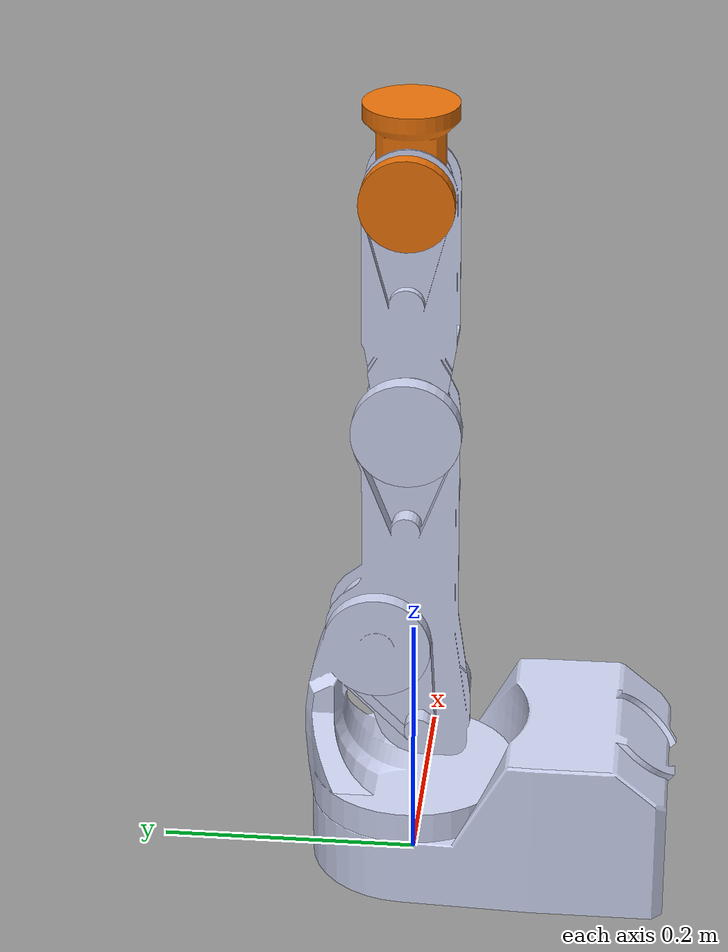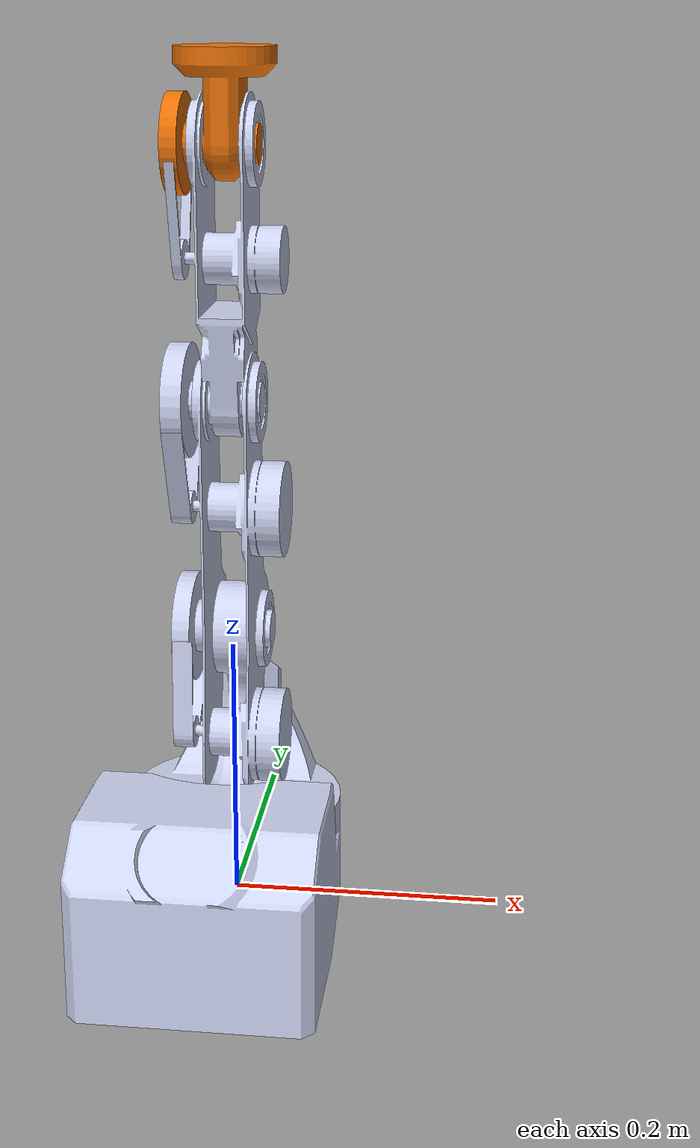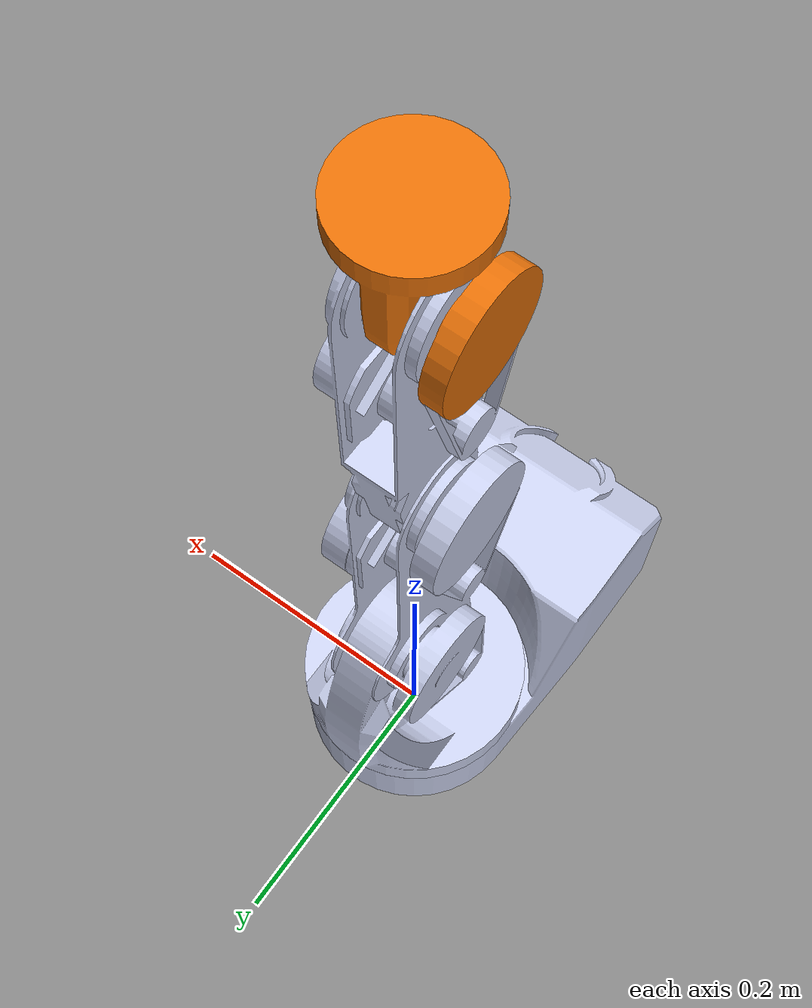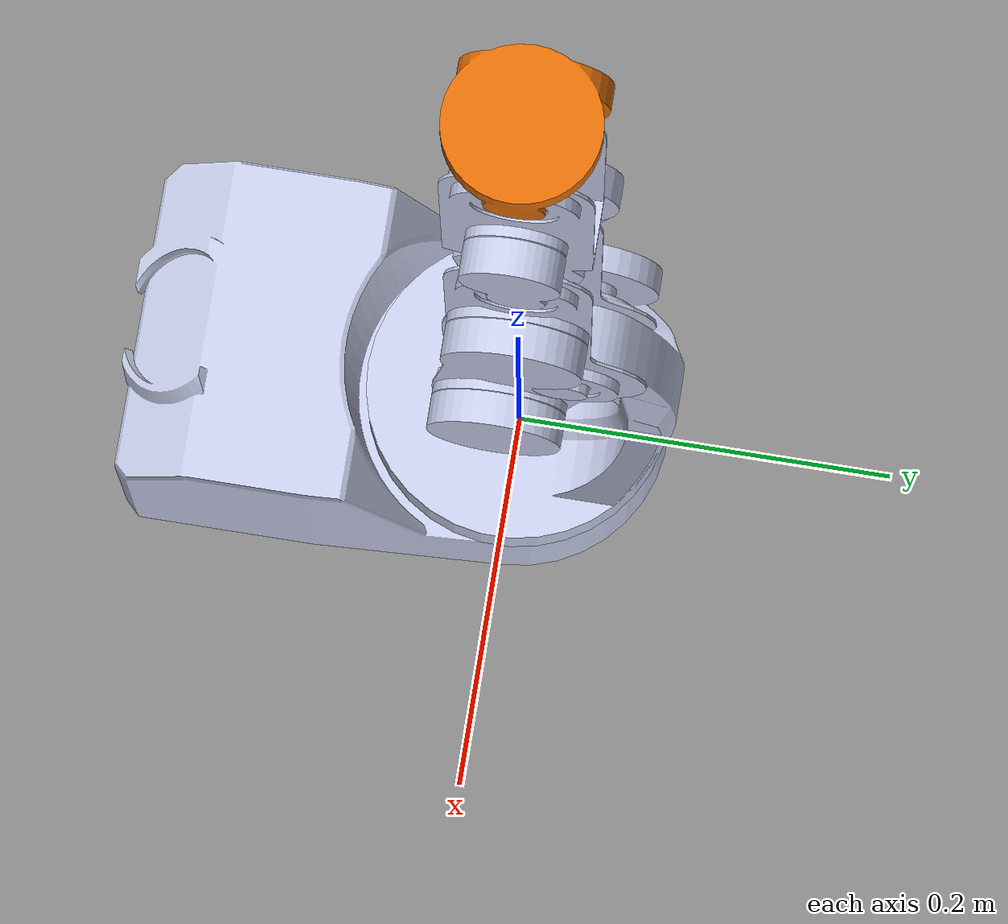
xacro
<?xml version="1.0" encoding="utf-8"?>
<!--
	RLS robot version 3
 -->
<robot xmlns:xacro="http://www.ros.org/wiki/xacro" name="rls_robot_v3">
  <xacro:property name="PI" value="3.14159265359" />

  <xacro:property name="limit_shoulder_rotation_low" value="${-2.0*PI}" />
  <xacro:property name="limit_shoulder_rotation_high" value="${2.0*PI}" />
  <xacro:property name="limit_elbow_rotation_low" value="${-121*PI/180.0}" />
  <xacro:property name="limit_elbow_rotation_high" value="${18*PI/180.0}" />
  <xacro:property name="limit_wrist_rotation_low" value="${-119*PI/180.0}" />
  <xacro:property name="limit_wrist_rotation_high" value="${119*PI/180.0}" />
  <xacro:property name="limit_hand_rotation_low" value="${-108*PI/180.0}" />
  <xacro:property name="limit_hand_rotation_high" value="${108*PI/180.0}" />

  <link name="world" />

  <link name="base_link">
    <inertial>
      <origin xyz="0.00223062005049845 -0.0860921789034845 0.0653078730969134" rpy="0 0 0" />
      <mass value="0.420648081913576" />
      <inertia 	ixx="0.000948066990730791" 	ixy="4.02249708875225E-05" 	ixz="-7.12558942280454E-06"
											iyy="0.00179158550854733" 	iyz="8.11480789637098E-05"
																		izz="0.00215415641805807" />
    </inertial>
    <visual>
      <origin xyz="0 0 0" rpy="0 0 0" />
      <geometry>
        <mesh filename="package://rls_robot_v3_description/meshes/base_link.STL" />
      </geometry>
      <material name="">
        <color rgba="0.796078431372549 0.823529411764706 0.937254901960784 1" />
      </material>
    </visual>
    <collision>
      <origin xyz="0 0 0" rpy="0 0 0" />
      <geometry>
        <mesh filename="package://rls_robot_v3_description/meshes/base_link.STL" />
      </geometry>
    </collision>
  </link>

  <joint name="joint_world" type="fixed">
    <origin xyz="0 0 0" rpy="0 0 0" />
    <parent link="world" />
    <child link="base_link" />
  </joint>

  <link name="shoulder_link">
    <inertial>
      <origin xyz="-0.00360461983507538 0.0196243579764001 0.0549791913640194" rpy="0 0 0" />
      <mass value="0.917296306384831" />
      <inertia 	ixx="0.00372809822859805" 	ixy="2.35187675560378E-06" 	ixz="4.15847551263434E-05"
											iyy="0.00317994476286337" 	iyz="-0.000578843384303617"
																		izz="0.00237331307162181" />
    </inertial>
    <visual>
      <origin xyz="0 0 0" rpy="0 0 0" />
      <geometry>
        <mesh filename="package://rls_robot_v3_description/meshes/shoulder_link.STL" />
      </geometry>
      <material name="">
        <color rgba="0.796078431372549 0.823529411764706 0.937254901960784 1" />
      </material>
    </visual>
    <collision>
      <origin xyz="0 0 0" rpy="0 0 0" />
      <geometry>
        <mesh filename="package://rls_robot_v3_description/meshes/shoulder_link.STL" />
      </geometry>
    </collision>
  </link>

  <joint name="joint_1" type="revolute">
	<limit effort="1.0" velocity="1.0" lower="${limit_shoulder_rotation_low}" upper="${limit_shoulder_rotation_high}" />
    <origin xyz="0 0 0.055" rpy="0 0 0" />
    <parent link="base_link" />
    <child link="shoulder_link" />
    <axis xyz="0 0 1" />
  </joint>

  <link name="elbow_link">
    <inertial>
      <origin xyz="0.010518 -0.023536 0.03141" rpy="0 0 0" />
      <mass value="0.41022" />
      <inertia 	ixx="0.00070293" 	ixy="-4.0883E-20" 	ixz="8.4717E-20"
									iyy="0.00058841" 	iyz="-1.2217E-05"
														izz="0.00014133" />
    </inertial>
    <visual>
      <origin xyz="0 0 0" rpy="0 0 0" />
      <geometry>
        <mesh filename="package://rls_robot_v3_description/meshes/elbow_link.STL" />
      </geometry>
      <material name="">
        <color rgba="0.79608 0.82353 0.93725 1" />
      </material>
    </visual>
    <collision>
      <origin xyz="0 0 0" rpy="0 0 0" />
      <geometry>
        <mesh filename="package://rls_robot_v3_description/meshes/elbow_link.STL" />
      </geometry>
    </collision>
  </link>

  <joint name="joint_2" type="revolute">
	<limit effort="1.0" velocity="1.0" lower="${limit_elbow_rotation_low}" upper="${limit_elbow_rotation_high}" />
    <origin xyz="0 0.025 0.15" rpy="0 0 0" />
    <parent link="shoulder_link" />
    <child link="elbow_link" />
    <axis xyz="1 0 0" />
  </joint>

  <link name="wrist_link">
    <inertial>
      <origin xyz="-0.00517759838399414 -1.12284313791289E-14 0.05914538962879" rpy="0 0 0" />
      <mass value="0.370456595734376" />
      <inertia 	ixx="0.000338616717561741" 	ixy="1.10349781664733E-14" 	ixz="-4.73908450960823E-05"
											iyy="0.00031647285637993" 	iyz="-1.23623627821828E-16"
																		izz="0.000186630647233192" />
    </inertial>
    <visual>
      <origin xyz="0 0 0" rpy="0 0 0" />
      <geometry>
        <mesh filename="package://rls_robot_v3_description/meshes/wrist_link.STL" />
      </geometry>
      <material name="">
        <color rgba="0.796078431372549 0.823529411764706 0.937254901960784 1" />
      </material>
    </visual>
    <collision>
      <origin xyz="0 0 0" rpy="0 0 0" />
      <geometry>
        <mesh filename="package://rls_robot_v3_description/meshes/wrist_link.STL" />
      </geometry>
    </collision>
  </link>

  <joint name="joint_3" type="revolute">
	<limit effort="1.0" velocity="1.0" lower="${limit_wrist_rotation_low}" upper="${limit_wrist_rotation_high}" />
    <origin xyz="0 -0.022 0.18" rpy="0 0 0" />
    <parent link="elbow_link" />
    <child link="wrist_link" />
    <axis xyz="1 0 0" />
  </joint>

  <link name="hand_link">
    <inertial>
      <origin xyz="-0.00796040032027464 -1.60461921527855E-17 0.0239989336979419" rpy="0 0 0" />
      <mass value="0.211251930706032" />
      <inertia 	ixx="0.000213040185297751" 	ixy="2.98830548714608E-21" 	ixz="-4.03578053376338E-05"
											iyy="0.000236261133782809" 	iyz="4.38702711805866E-20"
																		izz="0.000122829629792291" />
    </inertial>
    <visual>
      <origin xyz="0 0 0" rpy="0 0 0" />
      <geometry>
        <mesh filename="package://rls_robot_v3_description/meshes/hand_link.STL" />
      </geometry>
      <material name="">
        <color rgba="0.909803921568627 0.443137254901961 0.0313725490196078 1" />
      </material>
    </visual>
    <collision>
      <origin xyz="0 0 0" rpy="0 0 0" />
      <geometry>
        <mesh filename="package://rls_robot_v3_description/meshes/hand_link.STL" />
      </geometry>
    </collision>
  </link>

  <joint name="joint_4" type="revolute">
	<limit effort="1.0" velocity="1.0" lower="${limit_hand_rotation_low}" upper="${limit_hand_rotation_high}" />
    <origin xyz="0 0 0.18" rpy="0 0 0" />
    <parent link="wrist_link" />
    <child link="hand_link" />
    <axis xyz="1 0 0" />
  </joint>

  <link name="tool_link">
    <origin xyz="1.41495086362036E-17 4.33680868994202E-19 0.00500000000000012" rpy="0 0 0" />
  </link>

  <joint name="joint_tool" type="fixed">
    <origin xyz="0 0 0.065" rpy="0 0 0" />
    <parent link="hand_link" />
    <child link="tool_link" />
    <axis xyz="0 0 0" />
  </joint>

  <!-- TRANSMISSIONS -->
  <transmission name="tran_1">
	<type>transmission_interface/SimpleTransmission</type>
	<joint name="joint_1">
			<hardwareInterface>PositionJointInterface</hardwareInterface>
		</joint>
		<actuator name="motor_1">
			<hardwareInterface>PositionJointInterface</hardwareInterface>
			<mechanicalReduction>21.66</mechanicalReduction>
		</actuator>
	</transmission>

	<transmission name="tran_2">
		<type>transmission_interface/SimpleTransmission</type>
		<joint name="joint_2">
			<hardwareInterface>PositionJointInterface</hardwareInterface>
		</joint>
		<actuator name="motor_2">
			<hardwareInterface>PositionJointInterface</hardwareInterface>
			<mechanicalReduction>20.01</mechanicalReduction>
		</actuator>
	</transmission>

	<transmission name="tran_3">
		<type>transmission_interface/SimpleTransmission</type>
		<joint name="joint_3">
			<hardwareInterface>PositionJointInterface</hardwareInterface>
		</joint>
		<actuator name="motor_3">
			<hardwareInterface>PositionJointInterface</hardwareInterface>
			<mechanicalReduction>20.01</mechanicalReduction>
		</actuator>
	</transmission>

	<transmission name="tran_4">
		<type>transmission_interface/SimpleTransmission</type>
		<joint name="joint_4">
			<hardwareInterface>PositionJointInterface</hardwareInterface>
		</joint>
		<actuator name="motor_4">
			<hardwareInterface>PositionJointInterface</hardwareInterface>
			<mechanicalReduction>18.13</mechanicalReduction>
		</actuator>
	</transmission>
</robot>
